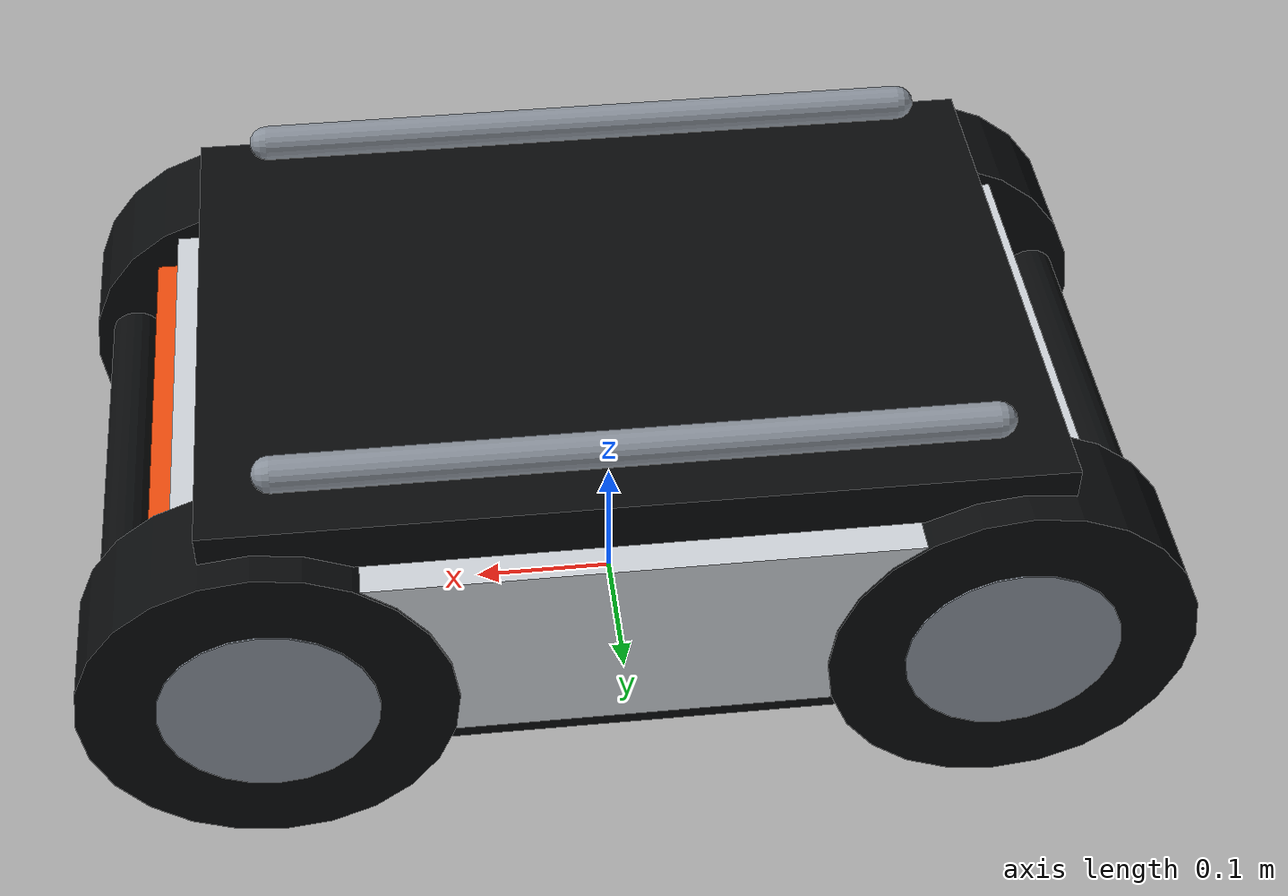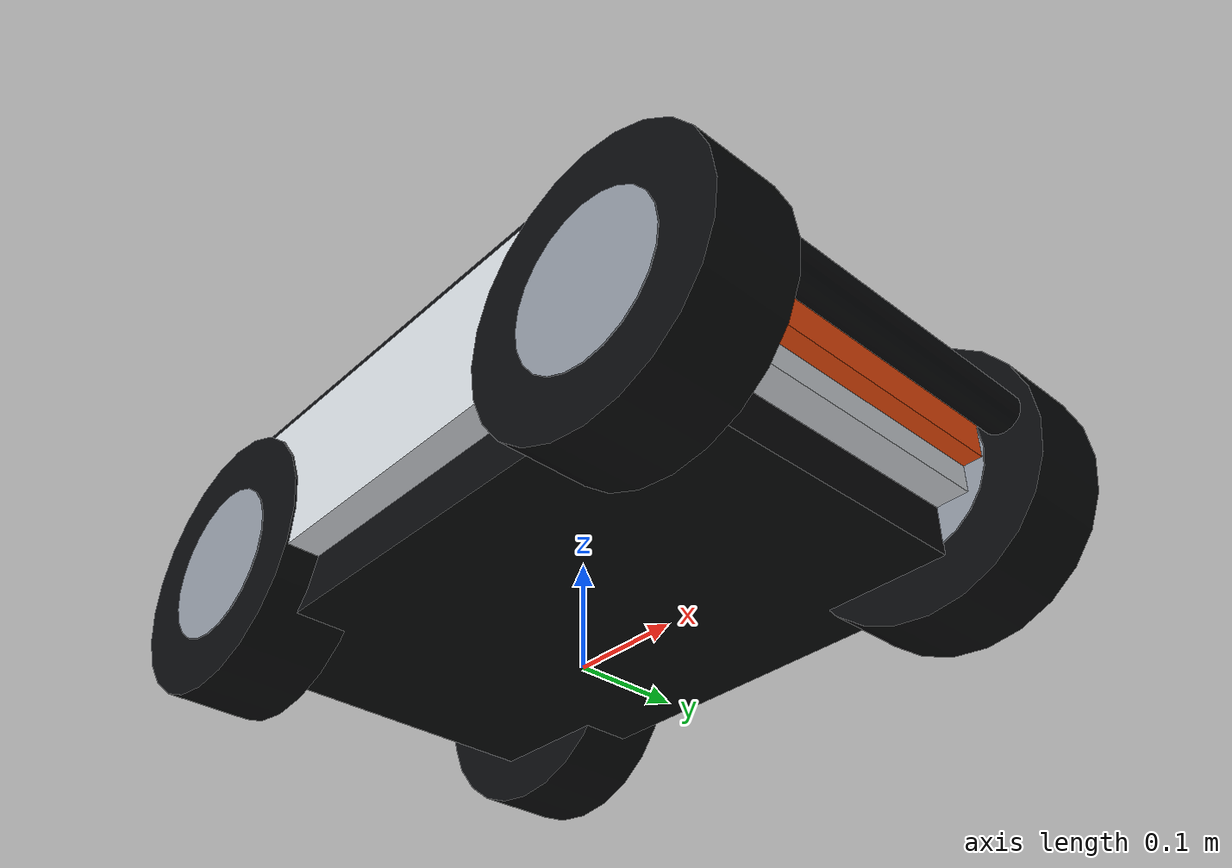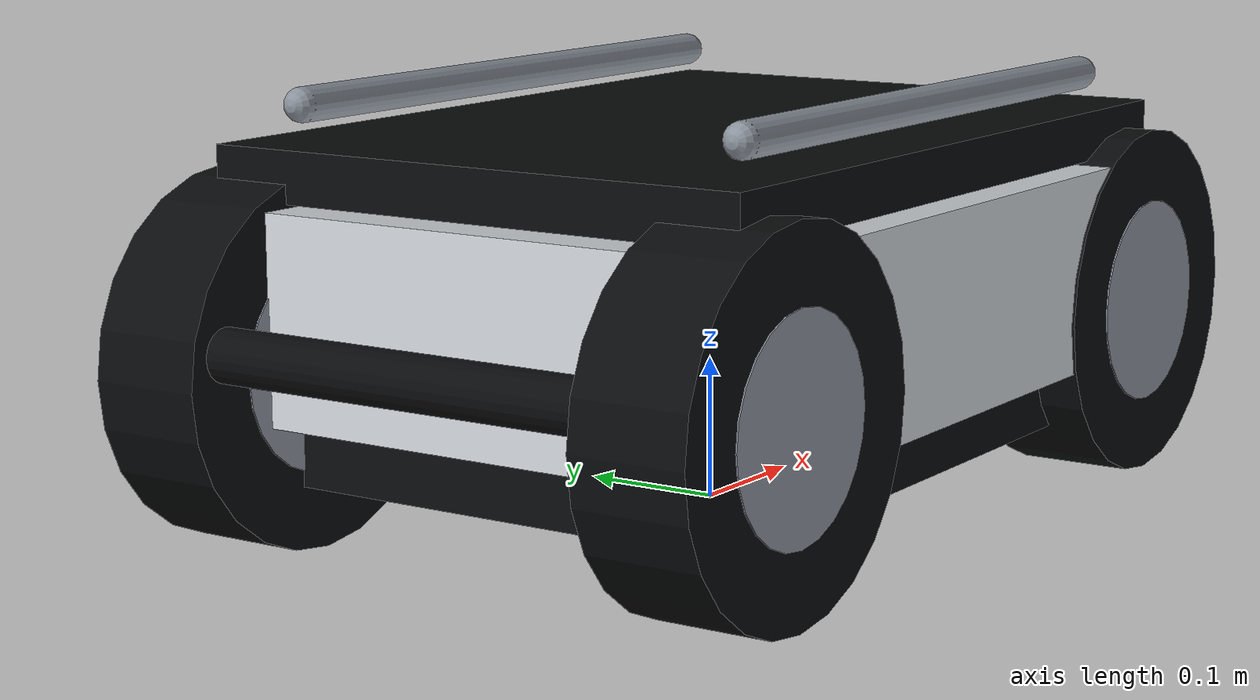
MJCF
<mujoco model="ranger_mini_v3">
  <compiler angle="radian" inertiafromgeom="false"/>
  <option timestep="0.001" gravity="0 0 -9.81" integrator="implicitfast" cone="pyramidal" jacobian="dense"/>
  <size memory="64M"/>
  <default>
    <joint damping="0.05" armature="0.001"/>
    <geom condim="4" friction="0.8 0.01 0.001" solref="0.01 1" solimp="0.9 0.95 0.001"/>
  </default>
  <asset>
    <material name="white" rgba="0.82 0.84 0.86 1"/>
    <material name="black" rgba="0.035 0.04 0.045 1"/>
    <material name="silver" rgba="0.55 0.58 0.62 1"/>
    <material name="orange" rgba="0.95 0.30 0.05 1"/>
  </asset>
  <worldbody>
    <!-- The free-joint frame is at the chassis shell centre. Wheel axle
         bodies are 35 mm below it, preserving the original ground contacts. -->
    <body name="chassis" pos="0 0 0.16">
      <freejoint name="root"/>
      <!-- Keep the free-joint, chassis shell, and inertial frame coincident. -->
      <inertial pos="0 0 0" mass="65" diaginertia="1.03 2.03 2.91"/>

      <!-- Explicit marker for the frame convention; it is visual-only and has no contact. -->
      <site name="chassis_frame" type="sphere" pos="0 0 0" size="0.008" rgba="0.95 0.15 0.05 1"/>

      <site name="imu" type="sphere" pos="0 0 0" size="0.001" group="3"/>

      <!-- Visible Ranger Mini V3 body. Contact geometry is kept separate so the model remains easy to audit. -->
      <geom name="chassis_lower_visual" type="box" pos="0 0 -0.075" size="0.27 0.19 0.04"
            material="black" contype="0" conaffinity="0"/>
      <geom name="chassis_shell_visual" type="box" pos="0 0 0" size="0.30 0.22 0.07"
            material="white" contype="0" conaffinity="0"/>
      <geom name="chassis_deck_visual" type="box" pos="0 0 0.09" size="0.28 0.20 0.0175"
            material="black" contype="0" conaffinity="0"/>
      <geom name="front_accent_visual" type="box" pos="0.305 0 0" size="0.0125 0.18 0.045"
            material="orange" contype="0" conaffinity="0"/>
      <geom name="front_bumper_visual" type="capsule" fromto="0.34 -0.18 -0.015 0.34 0.18 -0.015" size="0.018"
            material="black" contype="0" conaffinity="0"/>
      <geom name="rear_bumper_visual" type="capsule" fromto="-0.34 -0.18 -0.015 -0.34 0.18 -0.015" size="0.018"
            material="black" contype="0" conaffinity="0"/>
      <geom name="left_deck_rail" type="capsule" fromto="-0.23 0.17 0.13 0.23 0.17 0.13" size="0.012"
            material="silver" contype="0" conaffinity="0"/>
      <geom name="right_deck_rail" type="capsule" fromto="-0.23 -0.17 0.13 0.23 -0.17 0.13" size="0.012"
            material="silver" contype="0" conaffinity="0"/>
      <geom name="chassis_collision" type="box" pos="0 0 0" size="0.30 0.22 0.07" rgba="0 0 0 0"/>

      <body name="front_left_knuckle" pos="0.247 0.182 -0.035">
        <joint name="front_left_steer" type="hinge" axis="0 0 1" damping="0.001" limited="true"
               range="-1.5707963267948966 1.5707963267948966"/>
        <inertial pos="0 0 0" mass="0.5" diaginertia="0.002 0.002 0.002"/>
        <geom name="front_left_knuckle_visual" type="cylinder" size="0.035 0.05" material="silver"
              contype="0" conaffinity="0"/>
        <body name="front_left_wheel">
          <joint name="front_left_drive" type="hinge" axis="0 1 0" damping="0.05" limited="false"/>
          <inertial pos="0 0 0" mass="2" diaginertia="0.0089 0.015625 0.0089"/>
          <geom name="front_left_wheel_collision" type="cylinder" size="0.125 0.04"
                quat="0.7071067811865476 0.7071067811865476 0 0" material="black"/>
          <geom name="front_left_hub_visual" type="cylinder" size="0.073 0.041"
                quat="0.7071067811865476 0.7071067811865476 0 0" material="silver" contype="0" conaffinity="0"/>
        </body>
      </body>

      <body name="front_right_knuckle" pos="0.247 -0.182 -0.035">
        <joint name="front_right_steer" type="hinge" axis="0 0 1" damping="0.001" limited="true"
               range="-1.5707963267948966 1.5707963267948966"/>
        <inertial pos="0 0 0" mass="0.5" diaginertia="0.002 0.002 0.002"/>
        <geom name="front_right_knuckle_visual" type="cylinder" size="0.035 0.05" material="silver"
              contype="0" conaffinity="0"/>
        <body name="front_right_wheel">
          <joint name="front_right_drive" type="hinge" axis="0 1 0" damping="0.05" limited="false"/>
          <inertial pos="0 0 0" mass="2" diaginertia="0.0089 0.015625 0.0089"/>
          <geom name="front_right_wheel_collision" type="cylinder" size="0.125 0.04"
                quat="0.7071067811865476 0.7071067811865476 0 0" material="black"/>
          <geom name="front_right_hub_visual" type="cylinder" size="0.073 0.041"
                quat="0.7071067811865476 0.7071067811865476 0 0" material="silver" contype="0" conaffinity="0"/>
        </body>
      </body>

      <body name="rear_left_knuckle" pos="-0.247 0.182 -0.035">
        <joint name="rear_left_steer" type="hinge" axis="0 0 1" damping="0.001" limited="true"
               range="-1.5707963267948966 1.5707963267948966"/>
        <inertial pos="0 0 0" mass="0.5" diaginertia="0.002 0.002 0.002"/>
        <geom name="rear_left_knuckle_visual" type="cylinder" size="0.035 0.05" material="silver"
              contype="0" conaffinity="0"/>
        <body name="rear_left_wheel">
          <joint name="rear_left_drive" type="hinge" axis="0 1 0" damping="0.05" limited="false"/>
          <inertial pos="0 0 0" mass="2" diaginertia="0.0089 0.015625 0.0089"/>
          <geom name="rear_left_wheel_collision" type="cylinder" size="0.125 0.04"
                quat="0.7071067811865476 0.7071067811865476 0 0" material="black"/>
          <geom name="rear_left_hub_visual" type="cylinder" size="0.073 0.041"
                quat="0.7071067811865476 0.7071067811865476 0 0" material="silver" contype="0" conaffinity="0"/>
        </body>
      </body>

      <body name="rear_right_knuckle" pos="-0.247 -0.182 -0.035">
        <joint name="rear_right_steer" type="hinge" axis="0 0 1" damping="0.001" limited="true"
               range="-1.5707963267948966 1.5707963267948966"/>
        <inertial pos="0 0 0" mass="0.5" diaginertia="0.002 0.002 0.002"/>
        <geom name="rear_right_knuckle_visual" type="cylinder" size="0.035 0.05" material="silver"
              contype="0" conaffinity="0"/>
        <body name="rear_right_wheel">
          <joint name="rear_right_drive" type="hinge" axis="0 1 0" damping="0.05" limited="false"/>
          <inertial pos="0 0 0" mass="2" diaginertia="0.0089 0.015625 0.0089"/>
          <geom name="rear_right_wheel_collision" type="cylinder" size="0.125 0.04"
                quat="0.7071067811865476 0.7071067811865476 0 0" material="black"/>
          <geom name="rear_right_hub_visual" type="cylinder" size="0.073 0.041"
                quat="0.7071067811865476 0.7071067811865476 0 0" material="silver" contype="0" conaffinity="0"/>
        </body>
      </body>
    </body>
  </worldbody>
  <contact>
    <exclude body1="chassis" body2="front_left_wheel"/>
    <exclude body1="chassis" body2="front_right_wheel"/>
    <exclude body1="chassis" body2="rear_left_wheel"/>
    <exclude body1="chassis" body2="rear_right_wheel"/>
  </contact>
  <actuator>
    <motor name="front_left_steer_motor" joint="front_left_steer" gear="1" ctrllimited="true" ctrlrange="-25 25"/>
    <motor name="front_left_drive_motor" joint="front_left_drive" gear="1" ctrllimited="true" ctrlrange="-35 35"/>
    <motor name="front_right_steer_motor" joint="front_right_steer" gear="1" ctrllimited="true" ctrlrange="-25 25"/>
    <motor name="front_right_drive_motor" joint="front_right_drive" gear="1" ctrllimited="true" ctrlrange="-35 35"/>
    <motor name="rear_left_steer_motor" joint="rear_left_steer" gear="1" ctrllimited="true" ctrlrange="-25 25"/>
    <motor name="rear_left_drive_motor" joint="rear_left_drive" gear="1" ctrllimited="true" ctrlrange="-35 35"/>
    <motor name="rear_right_steer_motor" joint="rear_right_steer" gear="1" ctrllimited="true" ctrlrange="-25 25"/>
    <motor name="rear_right_drive_motor" joint="rear_right_drive" gear="1" ctrllimited="true" ctrlrange="-35 35"/>
  </actuator>
  <sensor>
    <gyro          name="ChassisIMU_gyro"          site="imu"/>
    <accelerometer name="ChassisIMU_accelerometer" site="imu"/>
  </sensor>
</mujoco>
